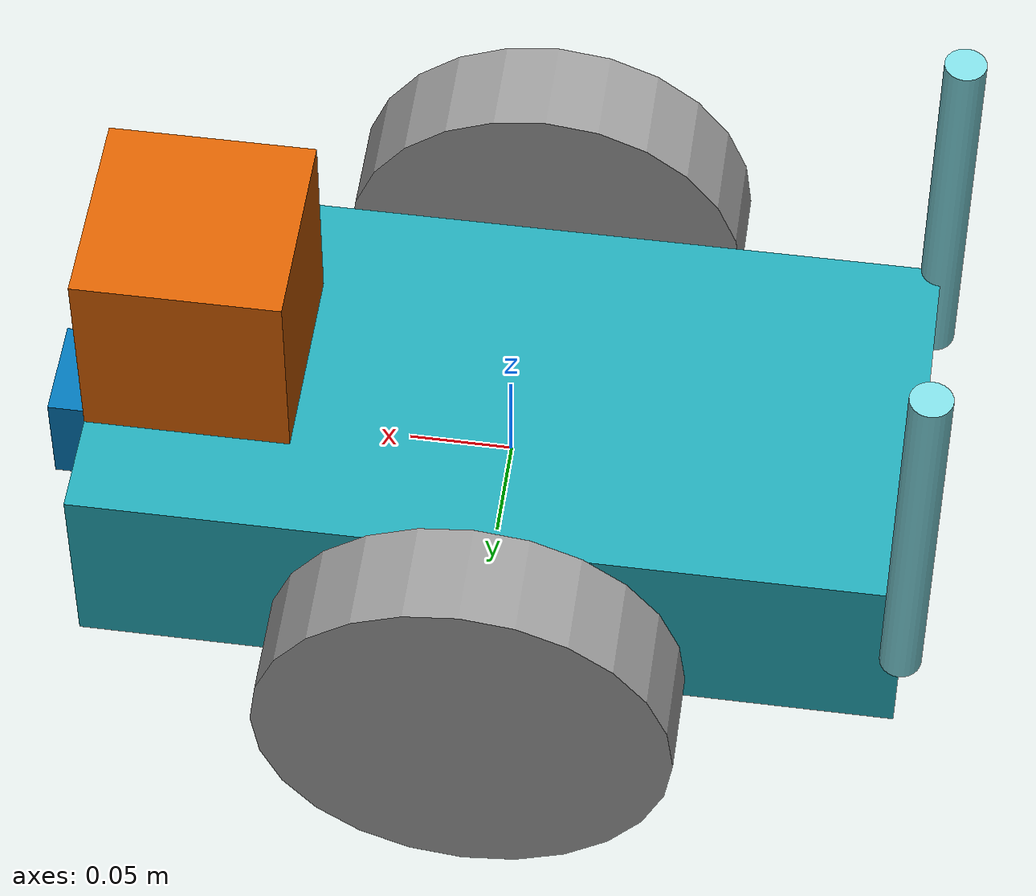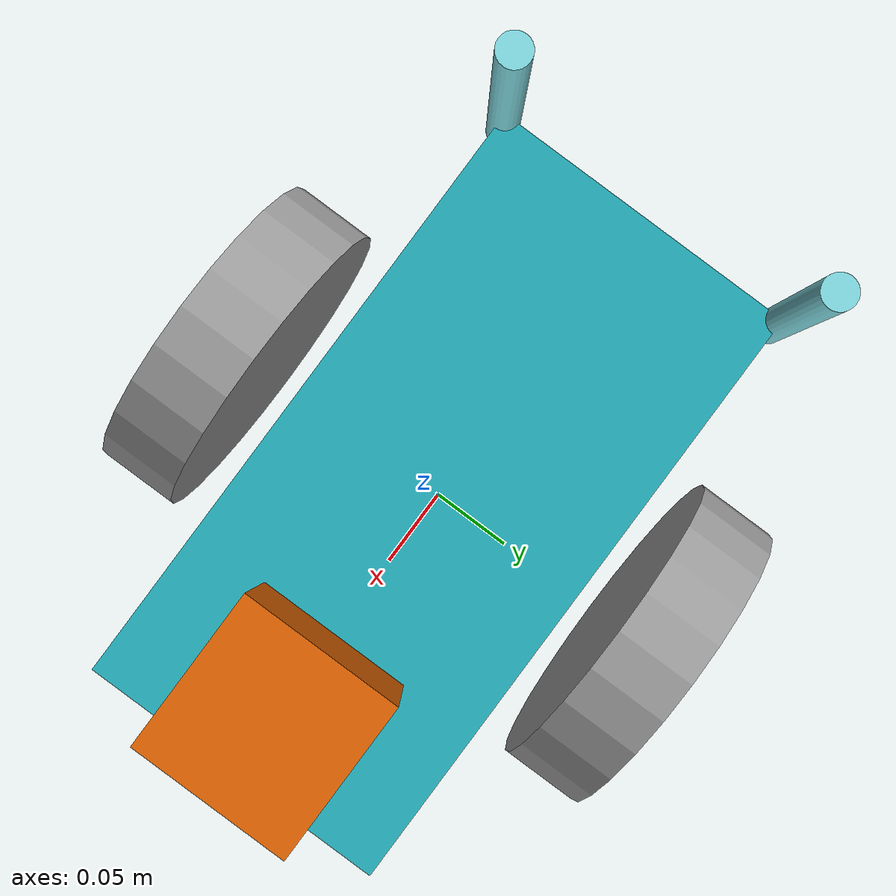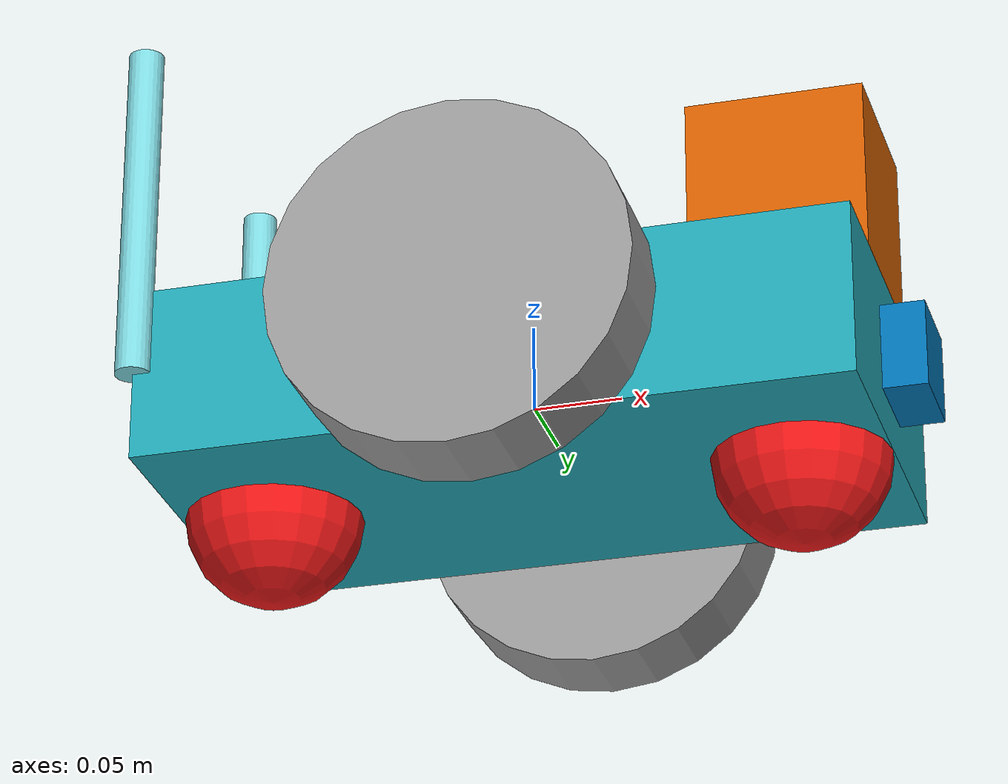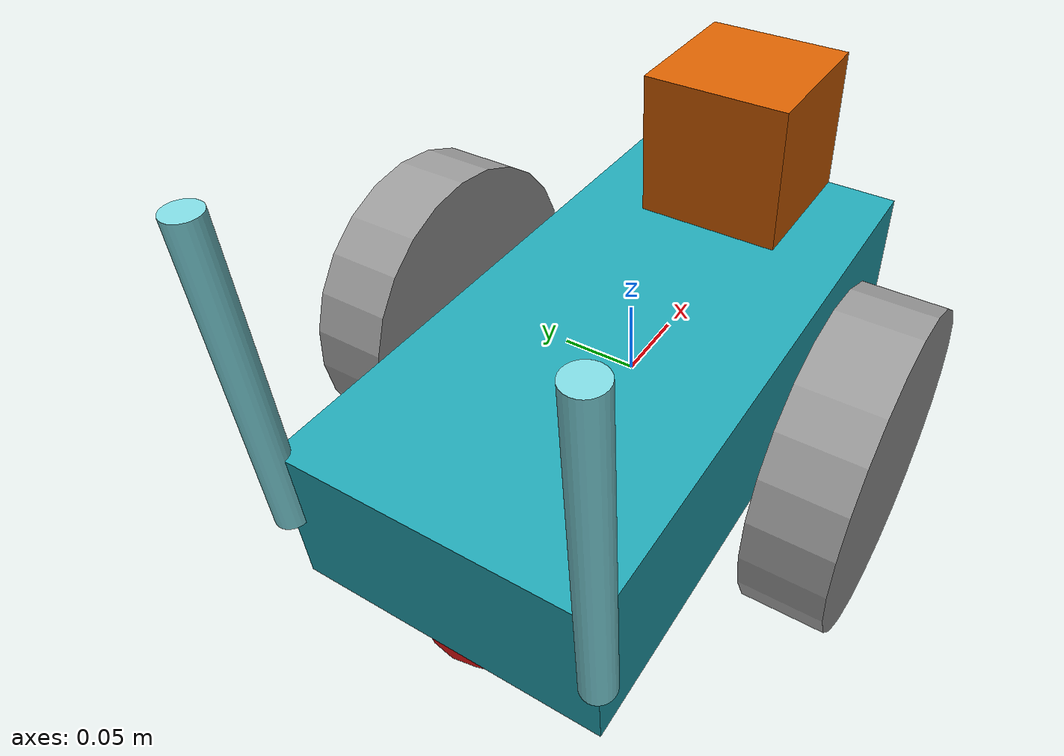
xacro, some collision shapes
<?xml version='1.0'?>

<robot name="my_robot"
  xmlns:xacro="http://www.ros.org/wiki/xacro">
  <xacro:include filename="$(find my_robot)/urdf/my_robot.gazebo" />
  <material name="red">
    <color rgba="0.92 0.09 0.09 1"/>
  </material>
  <material name="grey">
    <color rgba="0.2 0.2 0.2 1"/>
  </material>
  <material name="blue">
    <color rgba="0.13 0.65 0.70 1"/>
  </material>
  <material name="skyblue">
    <color rgba="0.49 0.84 0.87 1"/>
  </material>
  <link name="robot_footprint"></link>

  <joint name="robot_footprint_joint" type="fixed">
    <origin xyz="0 0 0" rpy="0 0 0" />
    <parent link="robot_footprint"/>
    <child link="chassis" />
  </joint>

  <link name='chassis'>
    <pose>0 0 0.1 0 0 0</pose>

    <inertial>
      <mass value="15.0"/>
      <origin xyz="0.0 0 0" rpy=" 0 0 0"/>
      <inertia ixx="0.1" ixy="0" ixz="0" iyy="0.1" iyz="0" izz="0.1" />
    </inertial>

    <collision name='collision'>
      <origin xyz="0 0 0" rpy=" 0 0 0"/>
      <geometry>
        <box size=".4 .2 .1"/>
      </geometry>
    </collision>

    <visual name='chassis_visual'>
      <origin xyz="0 0 0" rpy=" 0 0 0"/>
      <geometry>
        <box size=".4 .2 .1"/>
      </geometry>
      <material name="blue"/>
    </visual>

    <collision name='back_caster_collision'>
      <origin xyz="-0.15 0 -0.05" rpy=" 0 0 0"/>
      <geometry>
        <sphere radius="0.0499"/>
      </geometry>
    </collision>

    <visual name='back_caster_visual'>
      <origin xyz="-0.15 0 -0.05" rpy=" 0 0 0"/>
      <geometry>
        <sphere radius="0.05"/>
      </geometry>
      <material name="red"/>
    </visual>

    <collision name='front_caster_collision'>
      <origin xyz="0.15 0 -0.05" rpy=" 0 0 0"/>
      <geometry>
        <sphere radius="0.0499"/>
      </geometry>
    </collision>

    <visual name='front_caster_visual'>
      <origin xyz="0.15 0 -0.05" rpy=" 0 0 0"/>
      <geometry>
        <sphere radius="0.05"/>
      </geometry>
      <material name="red"/>
    </visual>

  </link>

  <!-- Left wheel -->
  <joint type="continuous" name="left_wheel_hinge">
    <origin xyz="0 0.15 0" rpy="0 0 0"/>
    <child link="left_wheel"/>
    <parent link="chassis"/>
    <axis xyz="0 1 0" rpy="0 0 0"/>
    <limit effort="10000" velocity="1000"/>
    <dynamics damping="1.0" friction="1.0"/>
  </joint>

  <link name="left_wheel">
    <pose>0 0 0 0 0 0</pose>

    <inertial>
      <mass value="5.0"/>
      <origin xyz="0.0 0 0" rpy="0.0 1.5707 1.5707"/>
      <inertia ixx="0.1" ixy="0" ixz="0" iyy="0.1" iyz="0" izz="0.1" />
    </inertial>

    <collision name='left_wheel_collision'>
      <origin xyz="0.0 0.0 0.0" rpy="0.0 1.5707 1.5707"/>
      <geometry>
        <cylinder radius="0.1" length="0.05"/>
      </geometry>
    </collision>

    <visual name='left_wheel_visual'>
      <origin xyz="0.0 0.0 0.0" rpy="0.0 1.5707 1.5707"/>
      <geometry>
        <cylinder radius="0.1" length="0.05"/>
      </geometry>
      <material name="gray"/>
    </visual>
  </link>

  <!-- Right wheel -->
  <joint type="continuous" name="right_wheel_hinge">
    <origin xyz="0 -0.15 0" rpy="0 0 0"/>
    <child link="right_wheel"/>
    <parent link="chassis"/>
    <axis xyz="0 1 0" rpy="0 0 0"/>
    <limit effort="10000" velocity="1000"/>
    <dynamics damping="1.0" friction="1.0"/>
  </joint>

  <link name="right_wheel">
    <pose>0 0 0 0 0 0</pose>

    <inertial>
      <mass value="5.0"/>
      <origin xyz="0.0 0 0" rpy="0.0 1.5707 1.5707"/>
      <inertia ixx="0.1" ixy="0" ixz="0" iyy="0.1" iyz="0" izz="0.1" />
    </inertial>

    <collision name='right_wheel_collision'>
      <origin xyz="0.0 0.0 0.0" rpy="0.0 1.5707 1.5707"/>
      <geometry>
        <cylinder radius="0.1" length="0.05"/>
      </geometry>
    </collision>

    <visual name='right_wheel_visual'>
      <origin xyz="0.0 0.0 0.0" rpy="0.0 1.5707 1.5707"/>
      <geometry>
        <cylinder radius="0.1" length="0.05"/>
      </geometry>
      <material name="gray"/>
    </visual>
  </link>

  <!-- For Camera -->
  <joint type="fixed" name="camera_joint">
    <origin xyz="0.2 0 0" rpy="0 0 0"/>
    <child link="camera"/>
    <parent link="chassis"/>
    <axis xyz="0 1 0" rpy="0 0 0"/>
  </joint>

  <link name="camera">
    <pose>0 0 0 0 0 0</pose>
    <inertial>
      <mass value="0.1"/>
      <origin xyz="0 0 0" rpy=" 0 0 0"/>
      <inertia ixx="1e-6" ixy="0" ixz="0" iyy="1e-6" iyz="0" izz="1e-6" />
    </inertial>

    <collision name='camera_collision'>
      <origin xyz="0.0 0.0 0.0" rpy="0.0 0 0"/>
      <geometry>
        <box size=".05 .05 .05"/>
      </geometry>
    </collision>

    <visual name='camera_visual'>
      <origin xyz="0.0 0.0 0.0" rpy="0.0 0 0"/>
      <geometry>
        <box size=".05 .05 .05"/>
      </geometry>
    </visual>
  </link>

  <!-- For Lidar -->
  <joint type="fixed" name="hokuyo_joint">
    <origin xyz="0.15 0 0.1" rpy="0 0 0"/>
    <child link="hokuyo"/>
    <parent link="chassis"/>
    <axis xyz="0 1 0" rpy="0 0 0"/>
  </joint>

  <link name="hokuyo">
    <pose>0 0 0 0 0 0</pose>
    <inertial>
      <mass value="1e-5"/>
      <origin xyz="0 0 0" rpy=" 0 0 0"/>
      <inertia ixx="1e-6" ixy="0" ixz="0" iyy="1e-6" iyz="0" izz="1e-6" />
    </inertial>

    <collision name='hokuyo_collision'>
      <origin xyz="0.0 0.0 0.0" rpy="0.0 0 0"/>
      <geometry>
        <box size=".1 .1 .1"/>
      </geometry>
    </collision>

    <visual name='hokuyo_visual'>
      <origin xyz="0.0 0.0 0.0" rpy="0.0 0 0"/>
      <geometry>
        <mesh filename="package://my_robot/meshes/hokuyo.dae"/>
      </geometry>
    </visual>
  </link>

  <!-- For Accesory -->
  <joint type="fixed" name="acc_01_joint">
    <origin xyz="-0.2 0.1 0.1" rpy="0 0 0"/>
    <child link="acc_01"/>
    <parent link="chassis"/>
    <axis xyz="0 1 0" rpy="0 0 0"/>
  </joint>

  <link name="acc_01">
    <pose>0 0 0 0 0 0</pose>
    <inertial>
      <mass value="0.1"/>
      <origin xyz="0 0 0" rpy=" 0 0 0"/>
      <inertia ixx="1e-6" ixy="0" ixz="0" iyy="1e-6" iyz="0" izz="1e-6" />
    </inertial>

    <visual name='acc_01_visual'>
      <origin xyz="0.0 0.0 0.0" rpy="0.0 0 0"/>
      <geometry>
        <cylinder radius="0.01" length="0.2"/>
      </geometry>
      <material name="skyblue"/>
    </visual>
  </link>

  <!-- For Accesory -->
  <joint type="fixed" name="acc_02_joint">
    <origin xyz="-0.2 -0.1 0.1" rpy="0 0 0"/>
    <child link="acc_02"/>
    <parent link="chassis"/>
    <axis xyz="0 1 0" rpy="0 0 0"/>
  </joint>

  <link name="acc_02">
    <pose>0 0 0 0 0 0</pose>
    <inertial>
      <mass value="0.1"/>
      <origin xyz="0 0 0" rpy=" 0 0 0"/>
      <inertia ixx="1e-6" ixy="0" ixz="0" iyy="1e-6" iyz="0" izz="1e-6" />
    </inertial>

    <visual name='acc_02_visual'>
      <origin xyz="0.0 0.0 0.0" rpy="0.0 0 0"/>
      <geometry>
        <cylinder radius="0.01" length="0.2"/>
      </geometry>
      <material name="skyblue"/>
    </visual>
  </link>
</robot>
